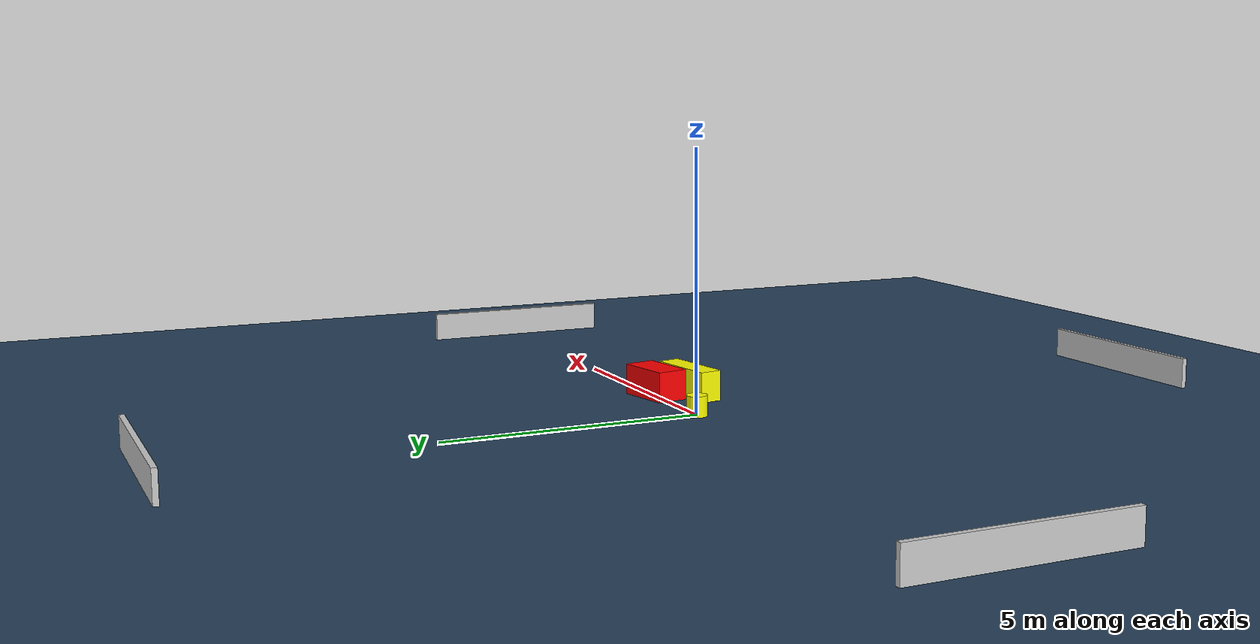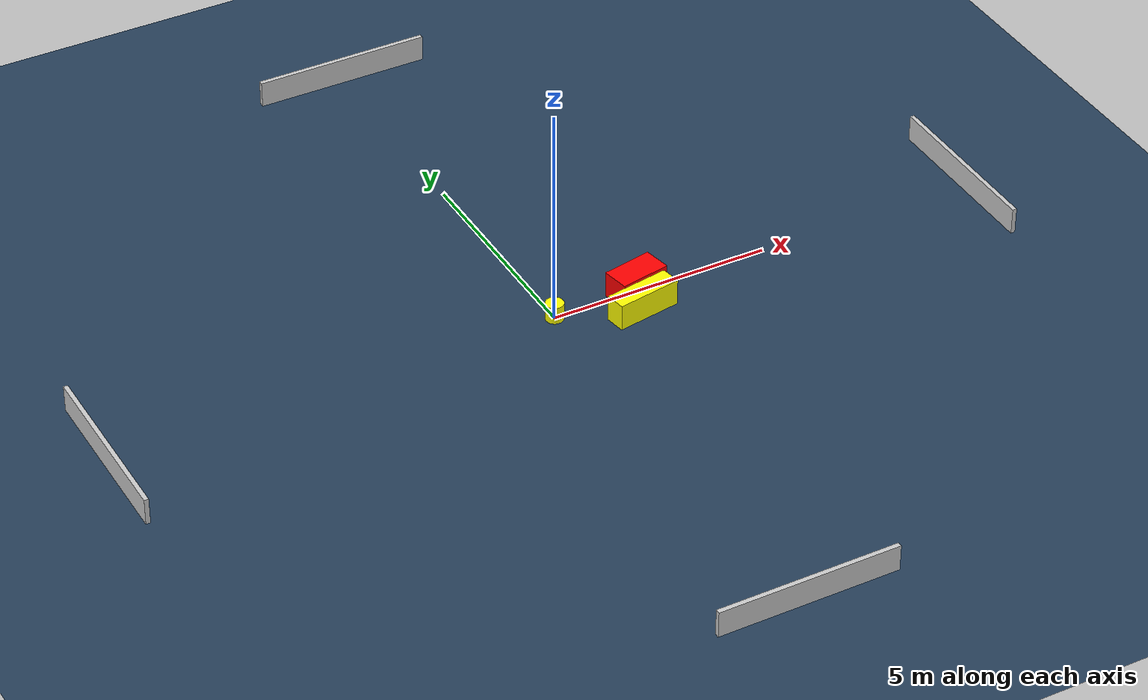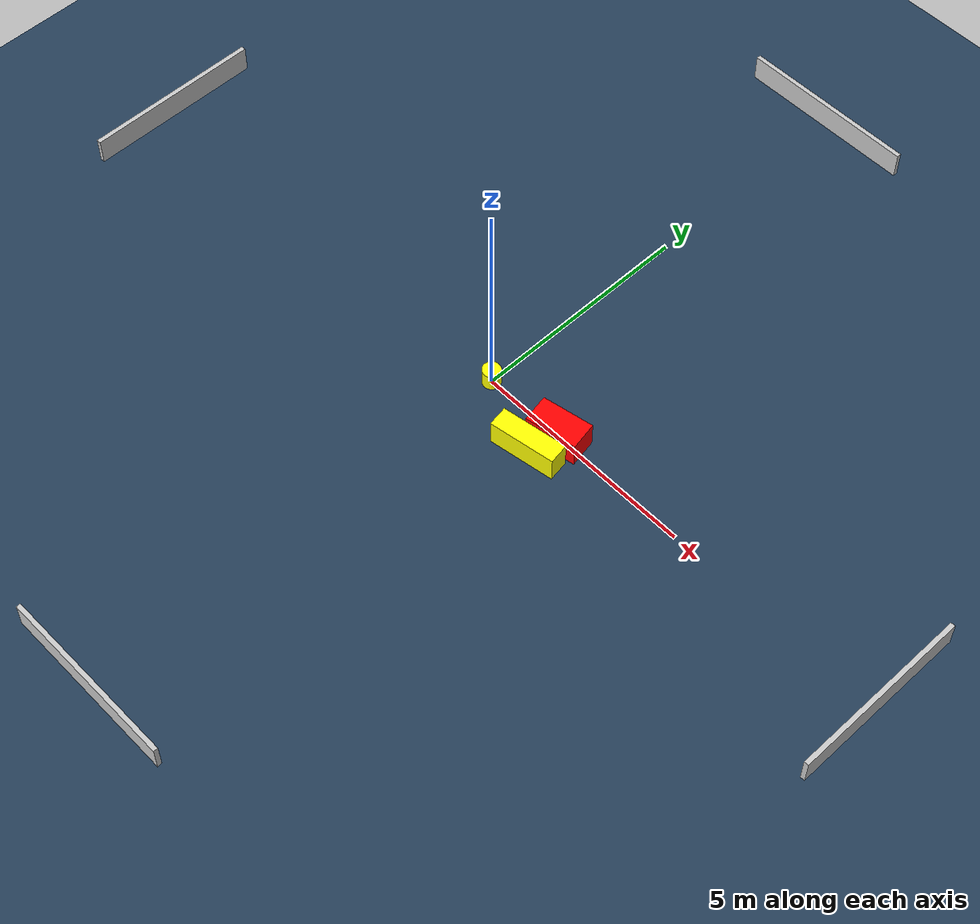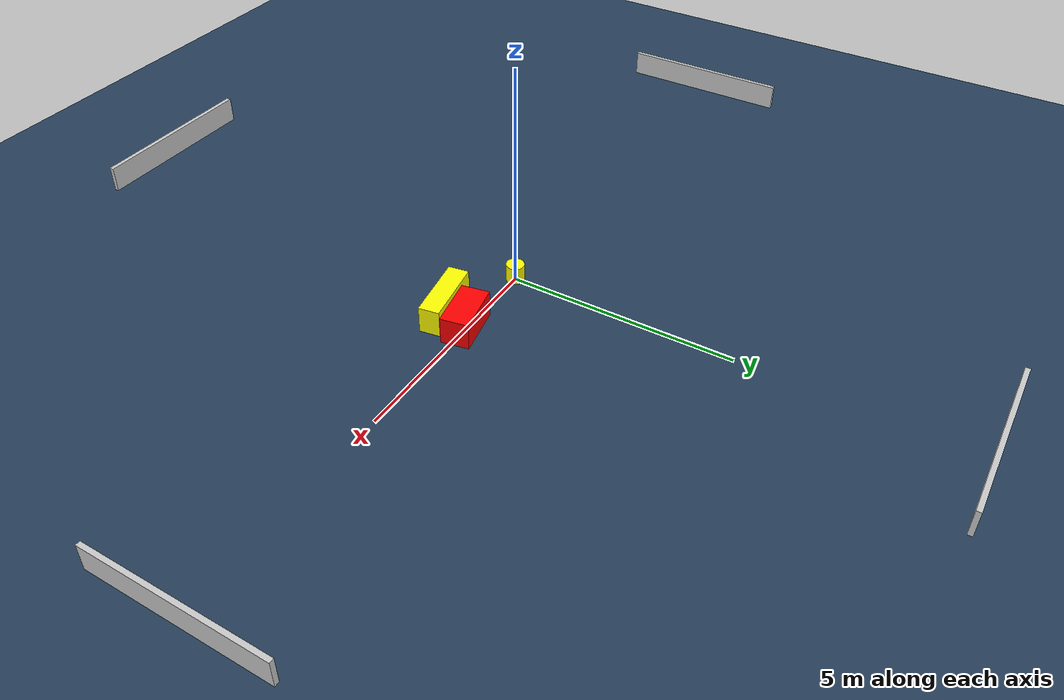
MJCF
<?xml version="1.0" ?>
<mujoco model="generated_environment">
  <option timestep="0.01" integrator="RK4" cone="elliptic"/>
  <default>
    <geom density="1"/>
  </default>
  <asset>
    <texture builtin="gradient" height="3072" name="skybox" rgb1="0.3 0.5 0.7" rgb2="0 0 0" type="skybox" width="512"/>
    <texture builtin="checker" height="300" name="groundplane" rgb1="0.2 0.3 0.4" rgb2="0.1 0.2 0.3" type="2d" width="300"/>
    <material name="groundplane" reflectance="0.2" texrepeat="5 5" texture="groundplane"/>
  </asset>
  <worldbody>
    <light dir="0 0 -1" directional="true" pos="0 0 1.5"/>
    <geom condim="3" friction="0.5 0.005 0.001" material="groundplane" name="floor" pos="0 0 0" size="0 0 0.05" type="plane"/>
    <body name="walls">
      <geom name="wall_1" condim="4" pos="-10.0 0.0 0.3" rgba="0.800000011920929 0.800000011920929 0.800000011920929 1.0" size="0.05 2.0 0.3" type="box"/>
      <geom name="wall_2" condim="4" pos="10.0 0.0 0.3" rgba="0.800000011920929 0.800000011920929 0.800000011920929 1.0" size="0.05 2.0 0.3" type="box"/>
      <geom name="wall_3" condim="4" pos="0.0 -10.0 0.3" rgba="0.800000011920929 0.800000011920929 0.800000011920929 1.0" size="2.0 0.05 0.3" type="box"/>
      <geom name="wall_4" condim="4" pos="0.0 10.0 0.3" rgba="0.800000011920929 0.800000011920929 0.800000011920929 1.0" size="2.0 0.05 0.3" type="box"/>
    </body>
    <body name="robot">
      <joint name="joint_x" type="slide" pos="0 0 0" axis="1 0 0"/>
      <joint name="joint_y" type="slide" pos="0 0 0" axis="0 1 0"/>
      <geom name="robot" type="cylinder" pos="0.0 0.0 0.2" size="0.2 0.2 0.0" mass="5.0" friction="1.0 0.005 0.0001" condim="4" rgba="1.0 1.0 0.0 1.0"/>
    </body>
    <body name="obstacle_1_movable">
      <geom name="obstacle_1_movable" condim="4" pos="1.7114544187214495 -0.6657555578740176 0.3" euler="0 0 99.30812199375421" friction="0.0 0.005 0.001" rgba="1.0 1.0 0.0 1.0" size="0.22587428824201483 0.7371789849990207 0.3" type="box" mass="0.1"/>
      <joint type="free"/>
    </body>
    <body name="obstacle_2_static">
      <geom name="obstacle_2_static" condim="4" pos="1.9133825937370148 -0.022278863525023562 0.3" euler="0 0 100.69475806852184" friction="0.0 0.005 0.001" rgba="1.0 0.0 0.0 1.0" size="0.3083352207401021 0.5730340996392134 0.3" type="box"/>
    </body>
  </worldbody>
  <actuator>
    <motor name="actuator_x" joint="joint_x" gear="1" ctrlrange="-1 1"/>
    <motor name="actuator_y" joint="joint_y" gear="1" ctrlrange="-1 1"/>
  </actuator>
</mujoco>
